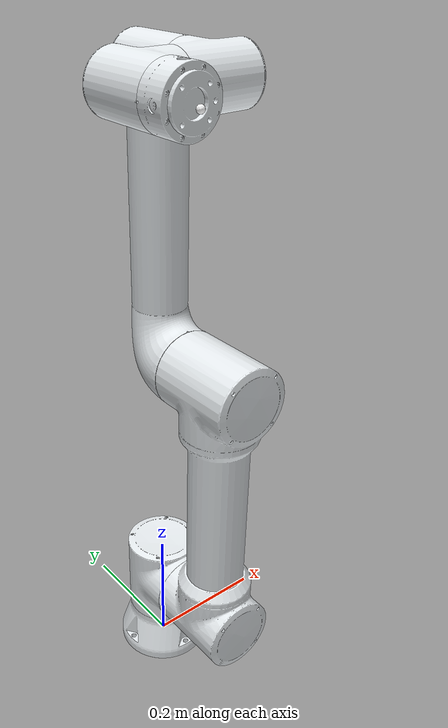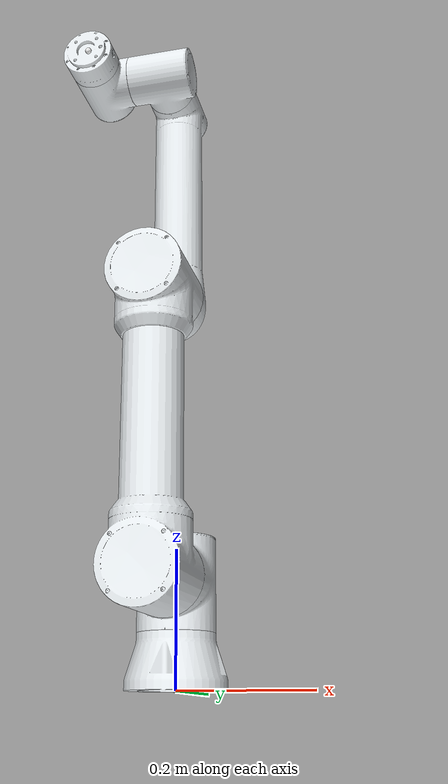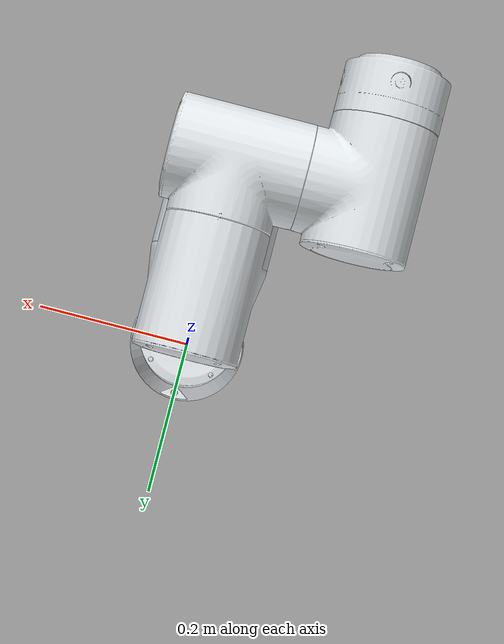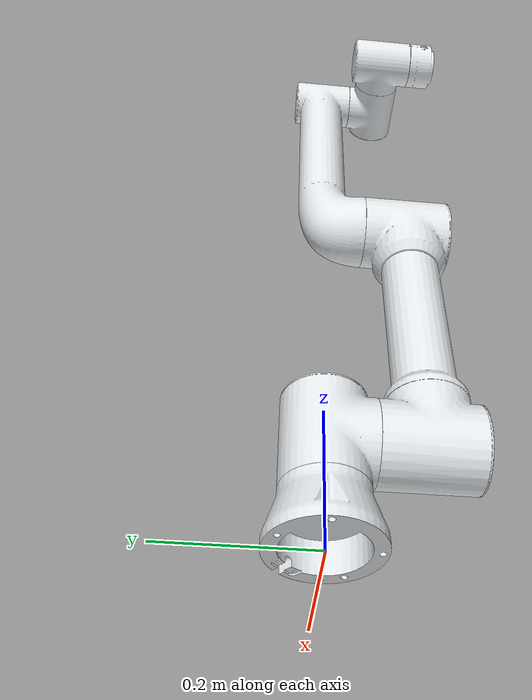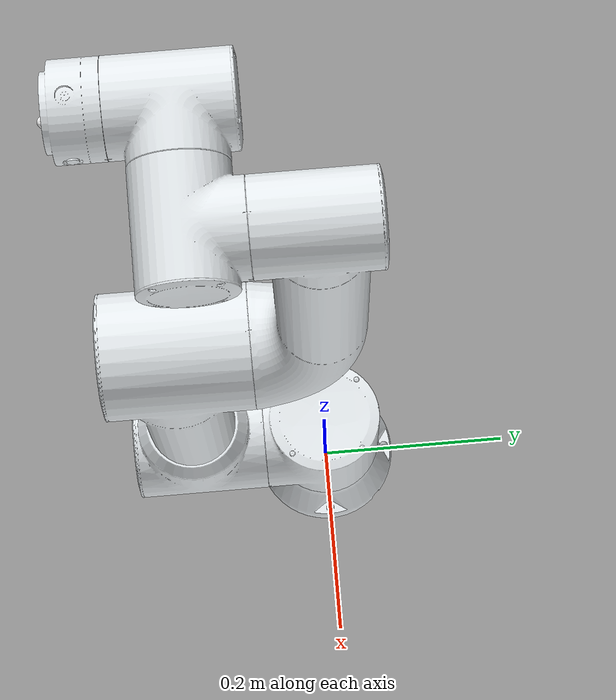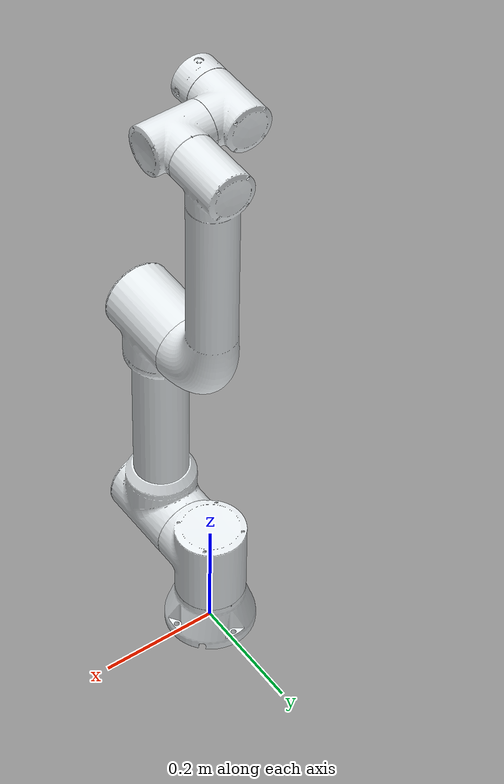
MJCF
<mujoco model="FR5Cobot">
    <compiler angle="radian"/>
    <visual>
        <headlight ambient="0.5 0.5 0.5"/>
    </visual>
    <option timestep="0.0005" integrator="implicitfast" gravity="0 0 -9.81">
        <flag sensornoise="disable" contact="enable" energy="enable" gravity="enable"/>
    </option>
    <asset>
        <mesh name="base_link" file="meshes/base_link.STL"/>
        <mesh name="j1_Link" file="meshes/j1_Link.STL"/>
        <mesh name="j2_Link" file="meshes/j2_Link.STL"/>
        <mesh name="j3_Link" file="meshes/j3_Link.STL"/>
        <mesh name="j4_Link" file="meshes/j4_Link.STL"/>
        <mesh name="j5_Link" file="meshes/j5_Link.STL"/>
        <mesh name="j6_Link" file="meshes/j6_Link.STL"/>
        <mesh name="tool_Link" file="meshes/tool_Link.STL"/>
    </asset>
    <worldbody>
        <body name="base_link">
            <geom type="mesh" contype="0" conaffinity="0" group="1" density="0" pos="0 0 0"
                  rgba="0.89804 0.91765 0.92941 1" mesh="base_link"/>
            <body name="j1_Link">
                <inertial pos="5.0029e-07 -0.0040922 0.14629" quat="0.999588 0.0287044 7.54149e-06 -1.58789e-05"
                          mass="4.3771" diaginertia="0.010731 0.0104154 0.00817191"/>
                <joint name="j1" pos="0 0 0" axis="0 0 1" range="-6.1086 6.1086" damping="0.05"/>
                <geom type="mesh" contype="0" conaffinity="0" group="1" density="0" rgba="0.89804 0.91765 0.92941 1"
                      mesh="j1_Link"/>
                <geom type="mesh" rgba="0.89804 0.91765 0.92941 1" mesh="j1_Link"/>
                <body name="j2_Link" pos="0 0 0.152" quat="0.499998 0.5 0.5 -0.500002">
                    <inertial pos="-0.2125 -5.7643e-09 0.1346" quat="0.5 0.5 0.5 0.5" mass="14.458"
                              diaginertia="0.4559 0.44974 0.028392"/>
                    <joint name="j2" pos="0 0 0" axis="0 0 1" range="-4.6251 1.4835" damping="0.05"/>
                    <geom type="mesh" contype="0" conaffinity="0" group="1" density="0" rgba="0.89804 0.91765 0.92941 1"
                          mesh="j2_Link"/>
                    <geom type="mesh" rgba="0.89804 0.91765 0.92941 1" mesh="j2_Link"/>
                    <body name="j3_Link" pos="-0.425 0 0">
                        <inertial pos="-0.18793 -8.4503e-07 0.0066357" quat="0.510607 0.489172 0.489196 0.510568"
                                  mass="7.6737" diaginertia="0.16971 0.168834 0.00821541"/>
                        <joint name="j3" pos="0 0 0" axis="0 0 1" range="-2.8274 2.8274" damping="0.05"/>
                        <geom type="mesh" contype="0" conaffinity="0" group="1" density="0"
                              rgba="0.89804 0.91765 0.92941 1"
                              mesh="j3_Link"/>
                        <geom type="mesh" rgba="0.89804 0.91765 0.92941 1" mesh="j3_Link"/>
                        <body name="j4_Link" pos="-0.39501 0 0">
                            <inertial pos="4.98e-07 -0.003754 0.097155"
                                      quat="0.736149 0.676819 -6.33095e-05 7.15237e-05"
                                      mass="1.6266" diaginertia="0.00216 0.00199337 0.00154233"/>
                            <joint name="j4" pos="0 0 0" axis="0 0 1" range="-4.6251 1.4835" damping="0.05"/>
                            <geom type="mesh" contype="0" conaffinity="0" group="1" density="0"
                                  rgba="0.89804 0.91765 0.92941 1" mesh="j4_Link"/>
                            <geom type="mesh" rgba="0.89804 0.91765 0.92941 1" mesh="j4_Link"/>
                            <body name="j5_Link" pos="0 0 0.1021" quat="0.707105 0.707108 0 0">
                                <inertial pos="-4.5588e-07 0.0038617 0.098257"
                                          quat="0.68712 0.726544 0.000128667 -0.000114125" mass="1.5812"
                                          diaginertia="0.0020612 0.00195889 0.00144611"/>
                                <joint name="j5" pos="0 0 0" axis="0 0 1" range="-3.0543 3.0543" damping="0.05"/>
                                <geom type="mesh" contype="0" conaffinity="0" group="1" density="0"
                                      rgba="0.89804 0.91765 0.92941 1" mesh="j5_Link"/>
                                <geom type="mesh" rgba="0.89804 0.91765 0.92941 1" mesh="j5_Link"/>
                                <body name="j6_Link" pos="0 0 0.102" quat="0.707105 -0.707108 0 0">
                                    <inertial pos="7.7496e-05 1.7751e-05 0.076122"
                                              quat="7.93213e-05 0.706804 0.00108234 0.707408" mass="0.52542"
                                              diaginertia="0.00041605 0.00027839 0.00027721"/>
                                    <joint name="j6" pos="0 0 0" axis="0 0 1" range="-3.0543 3.0543" damping="0.05"/>
                                    <geom type="mesh" contype="0" conaffinity="0" group="1" density="0"
                                          rgba="0.89804 0.91765 0.92941 1" mesh="j6_Link"/>
                                    <geom type="mesh" rgba="0.89804 0.91765 0.92941 1" mesh="j6_Link"/>
                                    <body name="tool_Link" pos="0 0 0.095" quat="1 0 0 0">
                                        <geom type="mesh" contype="0" conaffinity="0" group="1"
                                              density="0" rgba="1 1 1 1" mesh="tool_Link"/>
                                        <geom type="mesh" rgba="1 1 1 1" mesh="tool_Link"/>
                                    </body>
                                </body>
                            </body>
                        </body>
                    </body>
                </body>
            </body>
        </body>
    </worldbody>

    <actuator>
        <motor name="a1" ctrllimited="true" ctrlrange="-400.0 400.0" joint="j1"/>
        <motor name="a2" ctrllimited="true" ctrlrange="-400.0 400.0" joint="j2"/>
        <motor name="a3" ctrllimited="true" ctrlrange="-400.0 400.0" joint="j3"/>
        <motor name="a4" ctrllimited="true" ctrlrange="-400.0 400.0" joint="j4"/>
        <motor name="a5" ctrllimited="true" ctrlrange="-400.0 400.0" joint="j5"/>
        <motor name="a6" ctrllimited="true" ctrlrange="-400.0 400.0" joint="j6"/>
    </actuator>

</mujoco>
